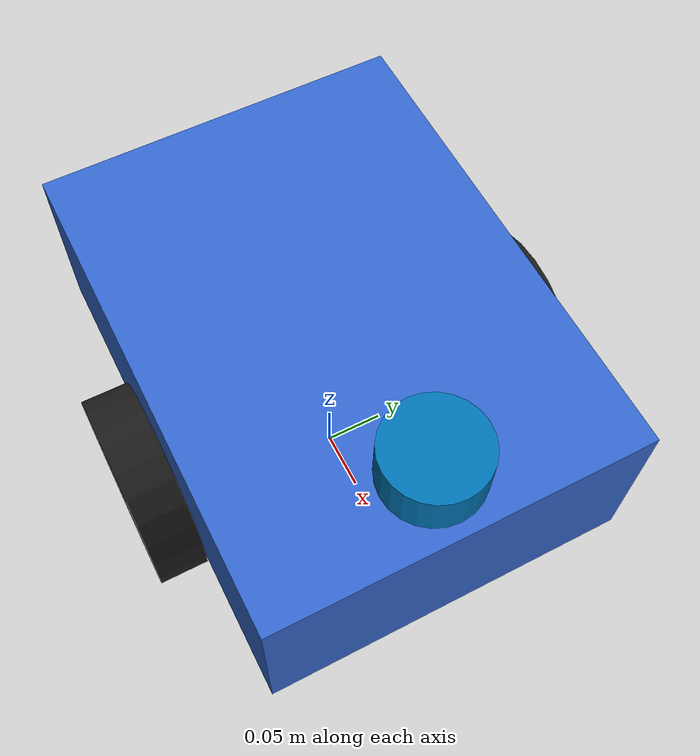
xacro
<?xml version="1.0"?>
<robot name="pathfinding_bot" xmlns:xacro="http://www.ros.org/wiki/xacro">

  <xacro:property name="base_length" value="0.4"/>
  <xacro:property name="base_width" value="0.3"/>
  <xacro:property name="base_height" value="0.15"/>
  <xacro:property name="wheel_radius" value="0.08"/>
  <xacro:property name="wheel_width" value="0.04"/>
  <xacro:property name="wheel_separation" value="0.34"/>

  <link name="base_footprint"/>

  <link name="base_link">
    <visual>
      <geometry>
        <box size="${base_length} ${base_width} ${base_height}"/>
      </geometry>
      <material name="blue">
        <color rgba="0.2 0.4 0.8 1.0"/>
      </material>
    </visual>
    <collision>
      <geometry>
        <box size="${base_length} ${base_width} ${base_height}"/>
      </geometry>
    </collision>
    <inertial>
      <mass value="5.0"/>
      <inertia ixx="0.1" ixy="0.0" ixz="0.0" iyy="0.1" iyz="0.0" izz="0.1"/>
    </inertial>
  </link>

  <joint name="base_joint" type="fixed">
    <parent link="base_footprint"/>
    <child link="base_link"/>
    <origin xyz="0 0 ${wheel_radius + base_height/2}" rpy="0 0 0"/>
  </joint>

  <xacro:macro name="wheel" params="prefix y_reflect">
    <link name="${prefix}_wheel">
      <visual>
        <origin xyz="0 0 0" rpy="${pi/2} 0 0"/>
        <geometry>
          <cylinder radius="${wheel_radius}" length="${wheel_width}"/>
        </geometry>
        <material name="black">
          <color rgba="0.1 0.1 0.1 1.0"/>
        </material>
      </visual>
      <collision>
        <origin xyz="0 0 0" rpy="${pi/2} 0 0"/>
        <geometry>
          <cylinder radius="${wheel_radius}" length="${wheel_width}"/>
        </geometry>
      </collision>
      <inertial>
        <mass value="0.5"/>
        <inertia ixx="0.001" ixy="0.0" ixz="0.0" iyy="0.001" iyz="0.0" izz="0.001"/>
      </inertial>
    </link>
    <joint name="${prefix}_wheel_joint" type="continuous">
      <parent link="base_link"/>
      <child link="${prefix}_wheel"/>
      <origin xyz="0 ${y_reflect * wheel_separation/2} ${-base_height/2}" rpy="0 0 0"/>
      <axis xyz="0 1 0"/>
    </joint>
  </xacro:macro>

  <xacro:wheel prefix="left" y_reflect="1"/>
  <xacro:wheel prefix="right" y_reflect="-1"/>

  <link name="lidar_link">
    <visual>
      <geometry>
        <cylinder radius="0.04" length="0.04"/>
      </geometry>
    </visual>
    <inertial>
      <mass value="0.1"/>
      <inertia ixx="0.0001" ixy="0.0" ixz="0.0" iyy="0.0001" iyz="0.0" izz="0.0001"/>
    </inertial>
  </link>
  <joint name="lidar_joint" type="fixed">
    <parent link="base_link"/>
    <child link="lidar_link"/>
    <origin xyz="${base_length/2 - 0.05} 0 ${base_height/2 + 0.02}" rpy="0 0 0"/>
  </joint>

  <!-- Gazebo Harmonic (gz-sim) system plugins -->
  <gazebo>
    <plugin filename="gz-sim-diff-drive-system"
            name="gz::sim::systems::DiffDrive">
      <left_joint>left_wheel_joint</left_joint>
      <right_joint>right_wheel_joint</right_joint>
      <wheel_separation>${wheel_separation}</wheel_separation>
      <wheel_radius>${wheel_radius}</wheel_radius>
      <topic>cmd_vel</topic>
      <odom_topic>odom</odom_topic>
      <frame_id>odom</frame_id>
      <child_frame_id>base_footprint</child_frame_id>
      <odom_publish_frequency>30</odom_publish_frequency>
    </plugin>

    <plugin filename="gz-sim-sensors-system"
            name="gz::sim::systems::Sensors">
      <render_engine>ogre2</render_engine>
    </plugin>
  </gazebo>

  <gazebo reference="lidar_link">
    <sensor name="lidar" type="gpu_lidar">
      <topic>scan</topic>
      <update_rate>10</update_rate>
      <always_on>true</always_on>
      <visualize>true</visualize>
      <lidar>
        <scan>
          <horizontal>
            <samples>360</samples>
            <resolution>1</resolution>
            <min_angle>-3.14159</min_angle>
            <max_angle>3.14159</max_angle>
          </horizontal>
        </scan>
        <range>
          <min>0.12</min>
          <max>10.0</max>
          <resolution>0.01</resolution>
        </range>
      </lidar>
    </sensor>
  </gazebo>

</robot>
